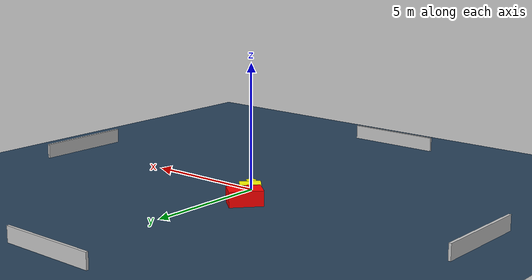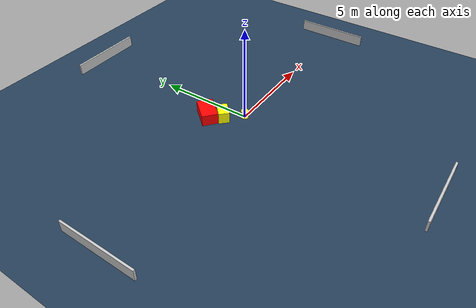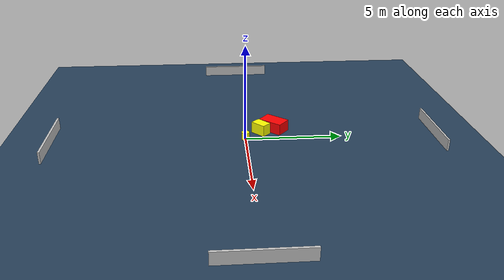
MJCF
<?xml version="1.0" ?>
<mujoco model="generated_environment">
  <option timestep="0.01" integrator="RK4" cone="elliptic"/>
  <default>
    <geom density="1"/>
  </default>
  <asset>
    <texture builtin="gradient" height="3072" name="skybox" rgb1="0.3 0.5 0.7" rgb2="0 0 0" type="skybox" width="512"/>
    <texture builtin="checker" height="300" name="groundplane" rgb1="0.2 0.3 0.4" rgb2="0.1 0.2 0.3" type="2d" width="300"/>
    <material name="groundplane" reflectance="0.2" texrepeat="5 5" texture="groundplane"/>
  </asset>
  <worldbody>
    <light dir="0 0 -1" directional="true" pos="0 0 1.5"/>
    <geom condim="3" friction="0.5 0.005 0.001" material="groundplane" name="floor" pos="0 0 0" size="0 0 0.05" type="plane"/>
    <body name="walls">
      <geom name="wall_1" condim="4" pos="-10.0 0.0 0.3" rgba="0.800000011920929 0.800000011920929 0.800000011920929 1.0" size="0.05 2.0 0.3" type="box"/>
      <geom name="wall_2" condim="4" pos="10.0 0.0 0.3" rgba="0.800000011920929 0.800000011920929 0.800000011920929 1.0" size="0.05 2.0 0.3" type="box"/>
      <geom name="wall_3" condim="4" pos="0.0 -10.0 0.3" rgba="0.800000011920929 0.800000011920929 0.800000011920929 1.0" size="2.0 0.05 0.3" type="box"/>
      <geom name="wall_4" condim="4" pos="0.0 10.0 0.3" rgba="0.800000011920929 0.800000011920929 0.800000011920929 1.0" size="2.0 0.05 0.3" type="box"/>
    </body>
    <body name="robot">
      <joint name="joint_x" type="slide" pos="0 0 0" axis="1 0 0"/>
      <joint name="joint_y" type="slide" pos="0 0 0" axis="0 1 0"/>
      <geom name="robot" type="cylinder" pos="0.0 0.0 0.2" size="0.2 0.2 0.0" mass="5.0" friction="1.0 0.005 0.0001" condim="4" rgba="1.0 1.0 0.0 1.0"/>
    </body>
    <body name="obstacle_1_movable">
      <geom name="obstacle_1_movable" condim="4" pos="-0.6989101488405698 0.8697098214385584 0.3" euler="0 0 43.44475748890256" friction="0.0 0.005 0.001" rgba="1.0 1.0 0.0 1.0" size="0.41359904772977474 0.2744898723998463 0.3" type="box" mass="0.1"/>
      <joint type="free"/>
    </body>
    <body name="obstacle_2_static">
      <geom name="obstacle_2_static" condim="4" pos="-1.059102252040559 1.5867871416690753 0.3" euler="0 0 49.98030485178826" friction="0.0 0.005 0.001" rgba="1.0 0.0 0.0 1.0" size="0.6595453096064072 0.41604154880939903 0.3" type="box"/>
    </body>
  </worldbody>
  <actuator>
    <motor name="actuator_x" joint="joint_x" gear="1" ctrlrange="-1 1"/>
    <motor name="actuator_y" joint="joint_y" gear="1" ctrlrange="-1 1"/>
  </actuator>
</mujoco>
